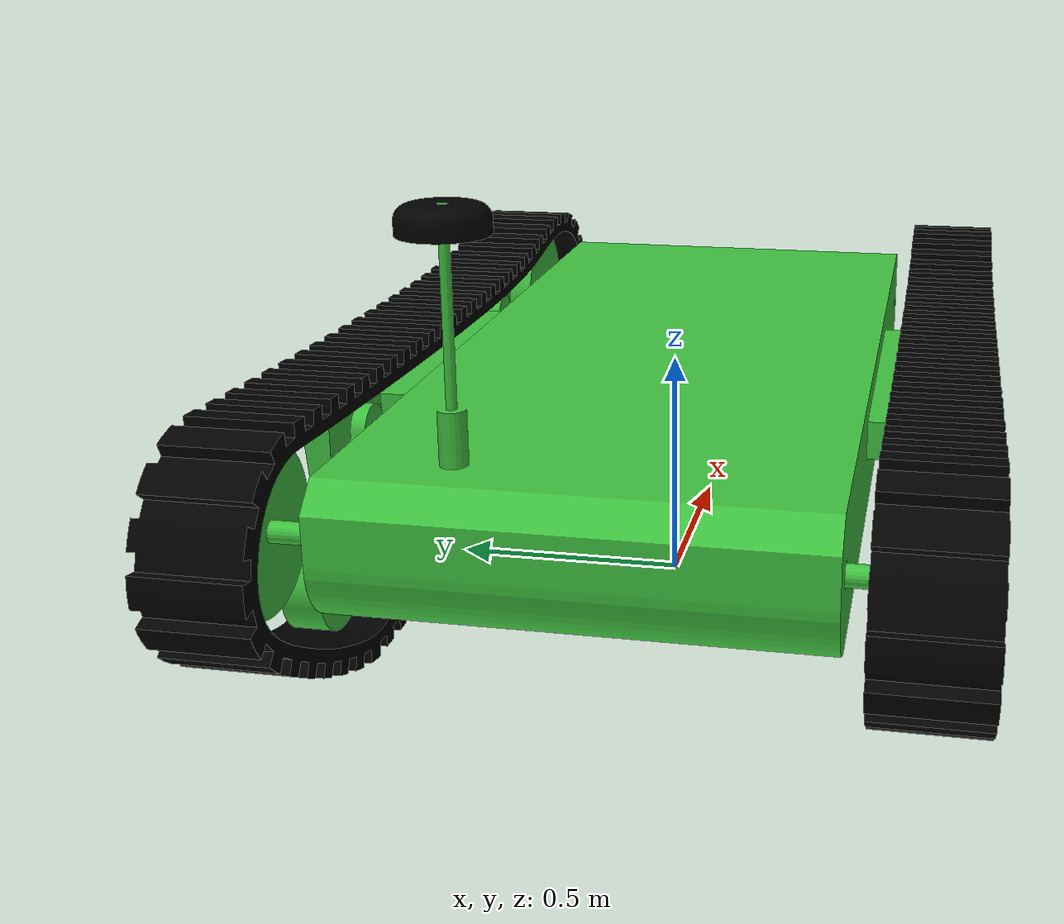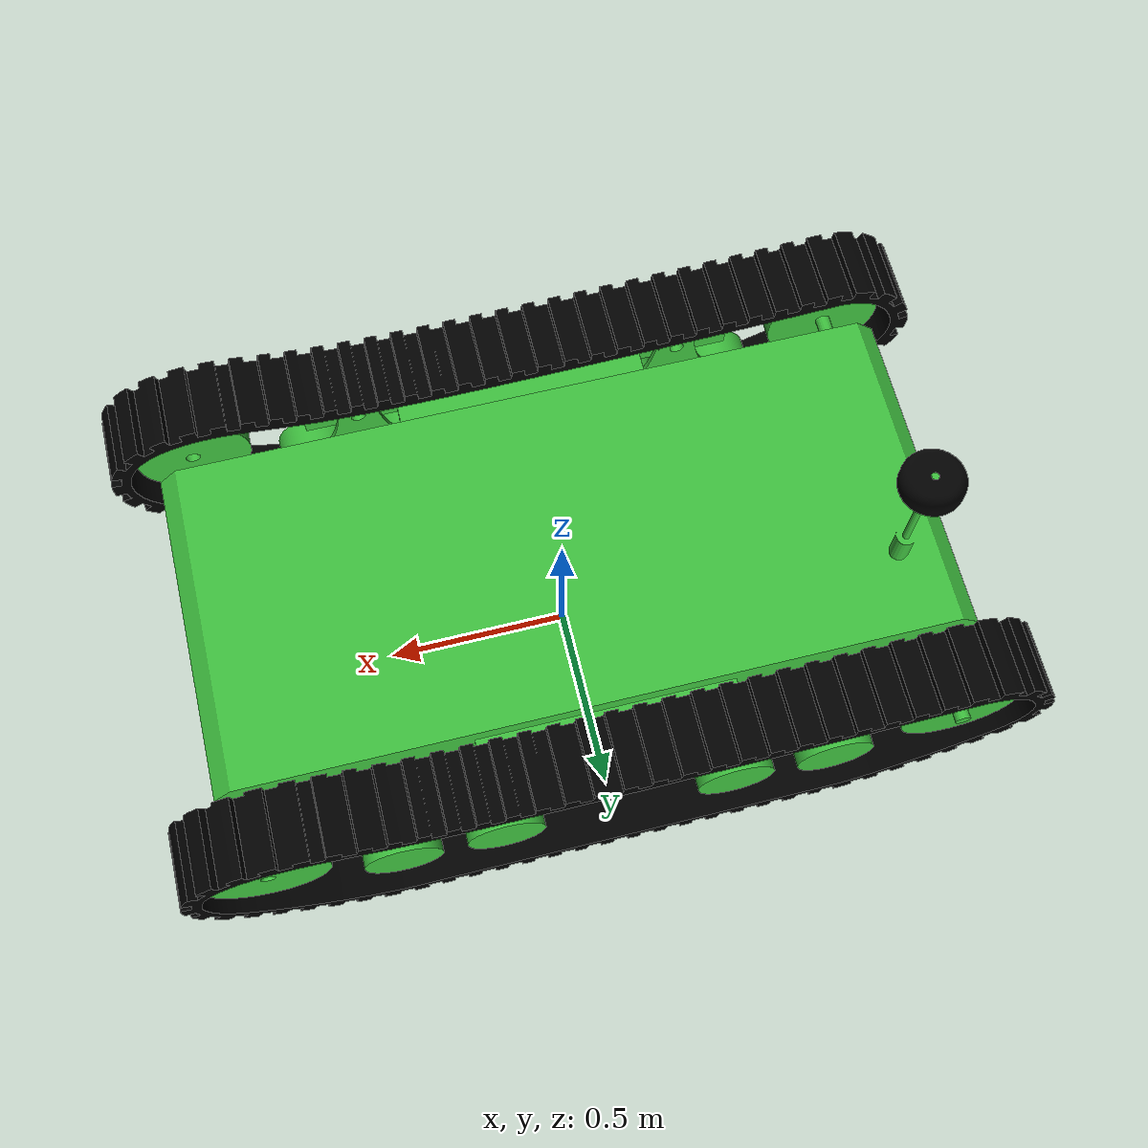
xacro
<?xml version="1.0" ?>
<robot name="base_link" xmlns:xacro="http://www.ros.org/wiki/xacro">

<!-- true  -> mock/"fake" ros2_control hardware (no physics, drive in RViz)
     false -> Gazebo Sim (gz_ros2_control) physics plugin -->
<xacro:arg name="use_mock_hardware" default="true" />

<xacro:include filename="$(find base_link_description)/urdf/materials.xacro" />

<xacro:include filename="$(find base_link_description)/urdf/base_link.gazebo" />

<!-- ros2_control hardware + controller interfaces for the drive wheels -->
<xacro:include filename="$(find base_link_description)/urdf/base_link.ros2control.xml" />
<xacro:base_link_ros2_control name="TankSystem" use_mock_hardware="$(arg use_mock_hardware)" />

<link name="base_footprint"/>

<link name="base_link">
  <inertial>
    <origin xyz="-0.00010002077702376659 0.0006224515569482331 0.01113434691014634" rpy="0 0 0"/>
    <mass value="461.29192739820286"/>
    <inertia ixx="147.674137" iyy="33.210044" izz="175.286525" ixy="-0.057608" iyz="0.049541" ixz="0.016827"/>
  </inertial>
  <visual>
    <origin xyz="0 0 0" rpy="0 0 0"/>
    <geometry>
      <mesh filename="file://$(find base_link_description)/meshes/base_link.stl" scale="0.001 0.001 0.001"/>
    </geometry>
    <material name="olive"/>
  </visual>
  <collision>
    <origin xyz="0 0 0" rpy="0 0 0"/>
    <geometry>
      <mesh filename="file://$(find base_link_description)/meshes/base_link.stl" scale="0.001 0.001 0.001"/>
    </geometry>
  </collision>
</link>

<link name="antenna_v2_1">
  <inertial>
    <origin xyz="1.4688707175580795e-07 1.635889268492008e-08 -0.026339341270721017" rpy="0 0 0"/>
    <mass value="7.443853988598451"/>
    <inertia ixx="0.013163" iyy="0.013163" izz="0.023421" ixy="0.0" iyz="-0.0" ixz="-0.0"/>
  </inertial>
  <visual>
    <origin xyz="0.227499 0.83798 -0.595434" rpy="0 0 0"/>
    <geometry>
      <mesh filename="file://$(find base_link_description)/meshes/antenna_v2_1.stl" scale="0.001 0.001 0.001"/>
    </geometry>
    <material name="noir"/>
  </visual>
  <collision>
    <origin xyz="0.227499 0.83798 -0.595434" rpy="0 0 0"/>
    <geometry>
      <mesh filename="file://$(find base_link_description)/meshes/antenna_v2_1.stl" scale="0.001 0.001 0.001"/>
    </geometry>
  </collision>
</link>

<link name="right_bar_v2_1">
  <inertial>
    <origin xyz="0.10777547321276287 -0.00187845083644138 -0.0002642432047443438" rpy="0 0 0"/>
    <mass value="111.43733098378524"/>
    <inertia ixx="9.426015" iyy="0.390473" izz="9.577074" ixy="0.007814" iyz="-4.1e-05" ixz="-0.0031"/>
  </inertial>
  <visual>
    <origin xyz="-0.443 0.005817 -0.05851" rpy="0 0 0"/>
    <geometry>
      <mesh filename="file://$(find base_link_description)/meshes/right_bar_v2_1.stl" scale="0.001 0.001 0.001"/>
    </geometry>
    <material name="olive"/>
  </visual>
  <collision>
    <origin xyz="-0.443 0.005817 -0.05851" rpy="0 0 0"/>
    <geometry>
      <mesh filename="file://$(find base_link_description)/meshes/right_bar_v2_1.stl" scale="0.001 0.001 0.001"/>
    </geometry>
  </collision>
</link>

<link name="left_bar_v2_1">
  <inertial>
    <origin xyz="-0.10228837341940195 -0.002513547475841639 -0.0002732197771366379" rpy="0 0 0"/>
    <mass value="107.77149910990899"/>
    <inertia ixx="9.283295" iyy="0.348238" izz="9.395681" ixy="-0.00916" iyz="-5.5e-05" ixz="0.003203"/>
  </inertial>
  <visual>
    <origin xyz="0.442 0.005817 -0.05851" rpy="0 0 0"/>
    <geometry>
      <mesh filename="file://$(find base_link_description)/meshes/left_bar_v2_1.stl" scale="0.001 0.001 0.001"/>
    </geometry>
    <material name="olive"/>
  </visual>
  <collision>
    <origin xyz="0.442 0.005817 -0.05851" rpy="0 0 0"/>
    <geometry>
      <mesh filename="file://$(find base_link_description)/meshes/left_bar_v2_1.stl" scale="0.001 0.001 0.001"/>
    </geometry>
  </collision>
</link>

<link name="left_back_glide_wheel_holder_v2_1">
  <inertial>
    <origin xyz="0.010782508394603929 0.0004752621318085404 -0.16365949373448246" rpy="0 0 0"/>
    <mass value="8.127452615459884"/>
    <inertia ixx="0.154629" iyy="0.0851" izz="0.070596" ixy="-7e-06" iyz="0.00041" ixz="0.000152"/>
  </inertial>
  <visual>
    <origin xyz="0.553 0.461162 -0.06173" rpy="0 0 0"/>
    <geometry>
      <mesh filename="file://$(find base_link_description)/meshes/left_back_glide_wheel_holder_v2_1.stl" scale="0.001 0.001 0.001"/>
    </geometry>
    <material name="olive"/>
  </visual>
  <collision>
    <origin xyz="0.553 0.461162 -0.06173" rpy="0 0 0"/>
    <geometry>
      <mesh filename="file://$(find base_link_description)/meshes/left_back_glide_wheel_holder_v2_1.stl" scale="0.001 0.001 0.001"/>
    </geometry>
  </collision>
</link>

<link name="left_front_glide_wheel_holder_v2_1">
  <inertial>
    <origin xyz="0.010782508394603929 0.0004747580919743366 -0.1636594937344824" rpy="0 0 0"/>
    <mass value="8.127452615459832"/>
    <inertia ixx="0.154629" iyy="0.0851" izz="0.070596" ixy="-7e-06" iyz="0.00041" ixz="0.000152"/>
  </inertial>
  <visual>
    <origin xyz="0.553 -0.439845 -0.06173" rpy="0 0 0"/>
    <geometry>
      <mesh filename="file://$(find base_link_description)/meshes/left_front_glide_wheel_holder_v2_1.stl" scale="0.001 0.001 0.001"/>
    </geometry>
    <material name="olive"/>
  </visual>
  <collision>
    <origin xyz="0.553 -0.439845 -0.06173" rpy="0 0 0"/>
    <geometry>
      <mesh filename="file://$(find base_link_description)/meshes/left_front_glide_wheel_holder_v2_1.stl" scale="0.001 0.001 0.001"/>
    </geometry>
  </collision>
</link>

<link name="right_front_glide_wheel_holder_v2_1">
  <inertial>
    <origin xyz="-0.010782508394647783 -0.0004746255244190145 -0.16365949374264965" rpy="0 0 0"/>
    <mass value="8.127452615544318"/>
    <inertia ixx="0.154629" iyy="0.0851" izz="0.070596" ixy="-7e-06" iyz="-0.00041" ixz="-0.000152"/>
  </inertial>
  <visual>
    <origin xyz="-0.563 -0.441851 -0.06173" rpy="0 0 0"/>
    <geometry>
      <mesh filename="file://$(find base_link_description)/meshes/right_front_glide_wheel_holder_v2_1.stl" scale="0.001 0.001 0.001"/>
    </geometry>
    <material name="olive"/>
  </visual>
  <collision>
    <origin xyz="-0.563 -0.441851 -0.06173" rpy="0 0 0"/>
    <geometry>
      <mesh filename="file://$(find base_link_description)/meshes/right_front_glide_wheel_holder_v2_1.stl" scale="0.001 0.001 0.001"/>
    </geometry>
  </collision>
</link>

<link name="right_back_glide_wheel_holder_v2_1">
  <inertial>
    <origin xyz="-0.010782508394647783 -0.00047512148458467296 -0.16365949374264957" rpy="0 0 0"/>
    <mass value="8.127452615544314"/>
    <inertia ixx="0.154629" iyy="0.0851" izz="0.070596" ixy="-7e-06" iyz="-0.00041" ixz="-0.000152"/>
  </inertial>
  <visual>
    <origin xyz="-0.563 0.459155 -0.06173" rpy="0 0 0"/>
    <geometry>
      <mesh filename="file://$(find base_link_description)/meshes/right_back_glide_wheel_holder_v2_1.stl" scale="0.001 0.001 0.001"/>
    </geometry>
    <material name="olive"/>
  </visual>
  <collision>
    <origin xyz="-0.563 0.459155 -0.06173" rpy="0 0 0"/>
    <geometry>
      <mesh filename="file://$(find base_link_description)/meshes/right_back_glide_wheel_holder_v2_1.stl" scale="0.001 0.001 0.001"/>
    </geometry>
  </collision>
</link>

<link name="right_back_wheel_v2_1">
  <inertial>
    <origin xyz="0.045664687889095446 0.00046458563283147125 -5.956414337113594e-05" rpy="0 0 0"/>
    <mass value="75.26539884501864"/>
    <inertia ixx="0.804248" iyy="6.293027" izz="6.29303" ixy="-0.003645" iyz="0.0" ixz="0.00047"/>
  </inertial>
  <visual>
    <origin xyz="-0.445 0.891477 -0.020339" rpy="0 0 0"/>
    <geometry>
      <mesh filename="file://$(find base_link_description)/meshes/right_back_wheel_v2_1.stl" scale="0.001 0.001 0.001"/>
    </geometry>
    <material name="olive"/>
  </visual>
  <collision>
    <origin xyz="-0.445 0.891477 -0.020339" rpy="0 0 0"/>
    <geometry>
      <mesh filename="file://$(find base_link_description)/meshes/right_back_wheel_v2_1.stl" scale="0.001 0.001 0.001"/>
    </geometry>
  </collision>
</link>

<link name="right_front_wheel_v2_1">
  <inertial>
    <origin xyz="0.14999999999999997 -0.004067886170248114 0.0010169312169315062" rpy="0 0 0"/>
    <mass value="58.26279925623116"/>
    <inertia ixx="0.711517" iyy="0.404319" izz="0.404304" ixy="0.0" iyz="-4e-06" ixz="-0.0"/>
  </inertial>
  <visual>
    <origin xyz="-0.445 -0.905845 -0.009" rpy="0 0 0"/>
    <geometry>
      <mesh filename="file://$(find base_link_description)/meshes/right_front_wheel_v2_1.stl" scale="0.001 0.001 0.001"/>
    </geometry>
    <material name="olive"/>
  </visual>
  <collision>
    <origin xyz="-0.445 -0.905845 -0.009" rpy="0 0 0"/>
    <geometry>
      <mesh filename="file://$(find base_link_description)/meshes/right_front_wheel_v2_1.stl" scale="0.001 0.001 0.001"/>
    </geometry>
  </collision>
</link>

<link name="left_front_wheel_v2_1">
  <inertial>
    <origin xyz="-0.14999999999999997 -1.6130252111778987e-07 3.226585665316861e-16" rpy="0 0 0"/>
    <mass value="61.898864581790114"/>
    <inertia ixx="0.801571" iyy="0.452368" izz="0.452368" ixy="0.0" iyz="0.0" ixz="0.0"/>
  </inertial>
  <visual>
    <origin xyz="0.445 -0.905845 -0.009" rpy="0 0 0"/>
    <geometry>
      <mesh filename="file://$(find base_link_description)/meshes/left_front_wheel_v2_1.stl" scale="0.001 0.001 0.001"/>
    </geometry>
    <material name="olive"/>
  </visual>
  <collision>
    <origin xyz="0.445 -0.905845 -0.009" rpy="0 0 0"/>
    <geometry>
      <mesh filename="file://$(find base_link_description)/meshes/left_front_wheel_v2_1.stl" scale="0.001 0.001 0.001"/>
    </geometry>
  </collision>
</link>

<link name="right_track_v2_1">
  <inertial>
    <origin xyz="-4.847200867352797e-07 0.013309623173726724 -0.17537645560050405" rpy="0 0 0"/>
    <mass value="41.280541740102585"/>
    <inertia ixx="22.1242" iyy="2.274667" izz="20.124736" ixy="0.0" iyz="0.00987" ixz="-0.0"/>
  </inertial>
  <visual>
    <origin xyz="-0.590942 0.009155 -0.122942" rpy="0 0 0"/>
    <geometry>
      <mesh filename="file://$(find base_link_description)/meshes/right_track_v2_1.stl" scale="0.001 0.001 0.001"/>
    </geometry>
    <material name="noir"/>
  </visual>
  <collision>
    <origin xyz="-0.590942 0.009155 -0.122942" rpy="0 0 0"/>
    <geometry>
      <mesh filename="file://$(find base_link_description)/meshes/right_track_v2_1.stl" scale="0.001 0.001 0.001"/>
    </geometry>
  </collision>
</link>

<link name="left_track_v3_1">
  <inertial>
    <origin xyz="4.847051781053935e-07 0.008309582381853376 -0.17537645560052342" rpy="0 0 0"/>
    <mass value="41.28054174010031"/>
    <inertia ixx="22.1242" iyy="2.274667" izz="20.124736" ixy="0.0" iyz="0.00987" ixz="-0.0"/>
  </inertial>
  <visual>
    <origin xyz="0.580942 0.010155 -0.122942" rpy="0 0 0"/>
    <geometry>
      <mesh filename="file://$(find base_link_description)/meshes/left_track_v3_1.stl" scale="0.001 0.001 0.001"/>
    </geometry>
    <material name="noir"/>
  </visual>
  <collision>
    <origin xyz="0.580942 0.010155 -0.122942" rpy="0 0 0"/>
    <geometry>
      <mesh filename="file://$(find base_link_description)/meshes/left_track_v3_1.stl" scale="0.001 0.001 0.001"/>
    </geometry>
  </collision>
</link>

<link name="left_glide_wheel_1_v2_1">
  <inertial>
    <origin xyz="-0.04000000000000026 2.93865748846045e-07 5.551115123125783e-17" rpy="0 0 0"/>
    <mass value="21.751445055659623"/>
    <inertia ixx="0.119905" iyy="0.071553" izz="0.071553" ixy="-0.0" iyz="0.0" ixz="0.0"/>
  </inertial>
  <visual>
    <origin xyz="0.553 -0.578351 0.2" rpy="0 0 0"/>
    <geometry>
      <mesh filename="file://$(find base_link_description)/meshes/left_glide_wheel_1_v2_1.stl" scale="0.001 0.001 0.001"/>
    </geometry>
    <material name="olive"/>
  </visual>
  <collision>
    <origin xyz="0.553 -0.578351 0.2" rpy="0 0 0"/>
    <geometry>
      <mesh filename="file://$(find base_link_description)/meshes/left_glide_wheel_1_v2_1.stl" scale="0.001 0.001 0.001"/>
    </geometry>
  </collision>
</link>

<link name="left_glide_wheel_2_v2_1">
  <inertial>
    <origin xyz="-0.040000000000000036 2.93865748846045e-07 0.0" rpy="0 0 0"/>
    <mass value="21.751445055659666"/>
    <inertia ixx="0.119905" iyy="0.071553" izz="0.071553" ixy="-0.0" iyz="-0.0" ixz="0.0"/>
  </inertial>
  <visual>
    <origin xyz="0.553 -0.303351 0.2" rpy="0 0 0"/>
    <geometry>
      <mesh filename="file://$(find base_link_description)/meshes/left_glide_wheel_2_v2_1.stl" scale="0.001 0.001 0.001"/>
    </geometry>
    <material name="olive"/>
  </visual>
  <collision>
    <origin xyz="0.553 -0.303351 0.2" rpy="0 0 0"/>
    <geometry>
      <mesh filename="file://$(find base_link_description)/meshes/left_glide_wheel_2_v2_1.stl" scale="0.001 0.001 0.001"/>
    </geometry>
  </collision>
</link>

<link name="left_glide_wheel_3_v2_1">
  <inertial>
    <origin xyz="-0.039999999999999925 -2.0209441681240392e-07 -2.7755575615628914e-17" rpy="0 0 0"/>
    <mass value="21.751445055659648"/>
    <inertia ixx="0.119905" iyy="0.071553" izz="0.071553" ixy="0.0" iyz="-0.0" ixz="0.0"/>
  </inertial>
  <visual>
    <origin xyz="0.553 0.322655 0.2" rpy="0 0 0"/>
    <geometry>
      <mesh filename="file://$(find base_link_description)/meshes/left_glide_wheel_3_v2_1.stl" scale="0.001 0.001 0.001"/>
    </geometry>
    <material name="olive"/>
  </visual>
  <collision>
    <origin xyz="0.553 0.322655 0.2" rpy="0 0 0"/>
    <geometry>
      <mesh filename="file://$(find base_link_description)/meshes/left_glide_wheel_3_v2_1.stl" scale="0.001 0.001 0.001"/>
    </geometry>
  </collision>
</link>

<link name="left_glide_wheel_4_v2_1">
  <inertial>
    <origin xyz="-0.040000000000000036 -2.0209441686791507e-07 -2.7755575615628914e-17" rpy="0 0 0"/>
    <mass value="21.751445055659605"/>
    <inertia ixx="0.119905" iyy="0.071553" izz="0.071553" ixy="0.0" iyz="0.0" ixz="0.0"/>
  </inertial>
  <visual>
    <origin xyz="0.553 0.597655 0.2" rpy="0 0 0"/>
    <geometry>
      <mesh filename="file://$(find base_link_description)/meshes/left_glide_wheel_4_v2_1.stl" scale="0.001 0.001 0.001"/>
    </geometry>
    <material name="olive"/>
  </visual>
  <collision>
    <origin xyz="0.553 0.597655 0.2" rpy="0 0 0"/>
    <geometry>
      <mesh filename="file://$(find base_link_description)/meshes/left_glide_wheel_4_v2_1.stl" scale="0.001 0.001 0.001"/>
    </geometry>
  </collision>
</link>

<link name="right_glide_wheel_1_v2_1">
  <inertial>
    <origin xyz="0.039999999999999925 3.427373466147188e-07 1.6653345369377348e-16" rpy="0 0 0"/>
    <mass value="21.751445055659644"/>
    <inertia ixx="0.119905" iyy="0.071553" izz="0.071553" ixy="-0.0" iyz="0.0" ixz="0.0"/>
  </inertial>
  <visual>
    <origin xyz="-0.563 0.597662 0.2" rpy="0 0 0"/>
    <geometry>
      <mesh filename="file://$(find base_link_description)/meshes/right_glide_wheel_1_v2_1.stl" scale="0.001 0.001 0.001"/>
    </geometry>
    <material name="olive"/>
  </visual>
  <collision>
    <origin xyz="-0.563 0.597662 0.2" rpy="0 0 0"/>
    <geometry>
      <mesh filename="file://$(find base_link_description)/meshes/right_glide_wheel_1_v2_1.stl" scale="0.001 0.001 0.001"/>
    </geometry>
  </collision>
</link>

<link name="right_glide_wheel_2_v2_1">
  <inertial>
    <origin xyz="0.039999999999999925 3.427373465592076e-07 1.6653345369377348e-16" rpy="0 0 0"/>
    <mass value="21.751445055659644"/>
    <inertia ixx="0.119905" iyy="0.071553" izz="0.071553" ixy="-0.0" iyz="-0.0" ixz="0.0"/>
  </inertial>
  <visual>
    <origin xyz="-0.563 0.322662 0.2" rpy="0 0 0"/>
    <geometry>
      <mesh filename="file://$(find base_link_description)/meshes/right_glide_wheel_2_v2_1.stl" scale="0.001 0.001 0.001"/>
    </geometry>
    <material name="olive"/>
  </visual>
  <collision>
    <origin xyz="-0.563 0.322662 0.2" rpy="0 0 0"/>
    <geometry>
      <mesh filename="file://$(find base_link_description)/meshes/right_glide_wheel_2_v2_1.stl" scale="0.001 0.001 0.001"/>
    </geometry>
  </collision>
</link>

<link name="right_glide_wheel_3_v2_1">
  <inertial>
    <origin xyz="0.039999999999999925 -1.6130248775558798e-07 0.0" rpy="0 0 0"/>
    <mass value="21.751445055659666"/>
    <inertia ixx="0.119905" iyy="0.071553" izz="0.071553" ixy="-0.0" iyz="0.0" ixz="-0.0"/>
  </inertial>
  <visual>
    <origin xyz="-0.563 -0.303345 0.2" rpy="0 0 0"/>
    <geometry>
      <mesh filename="file://$(find base_link_description)/meshes/right_glide_wheel_3_v2_1.stl" scale="0.001 0.001 0.001"/>
    </geometry>
    <material name="olive"/>
  </visual>
  <collision>
    <origin xyz="-0.563 -0.303345 0.2" rpy="0 0 0"/>
    <geometry>
      <mesh filename="file://$(find base_link_description)/meshes/right_glide_wheel_3_v2_1.stl" scale="0.001 0.001 0.001"/>
    </geometry>
  </collision>
</link>

<link name="right_glide_wheel_4_v2_1">
  <inertial>
    <origin xyz="0.039999999999999925 -1.6130248770007682e-07 0.0" rpy="0 0 0"/>
    <mass value="21.751445055659666"/>
    <inertia ixx="0.119905" iyy="0.071553" izz="0.071553" ixy="0.0" iyz="0.0" ixz="-0.0"/>
  </inertial>
  <visual>
    <origin xyz="-0.563 -0.578345 0.2" rpy="0 0 0"/>
    <geometry>
      <mesh filename="file://$(find base_link_description)/meshes/right_glide_wheel_4_v2_1.stl" scale="0.001 0.001 0.001"/>
    </geometry>
    <material name="olive"/>
  </visual>
  <collision>
    <origin xyz="-0.563 -0.578345 0.2" rpy="0 0 0"/>
    <geometry>
      <mesh filename="file://$(find base_link_description)/meshes/right_glide_wheel_4_v2_1.stl" scale="0.001 0.001 0.001"/>
    </geometry>
  </collision>
</link>

<link name="left_back_wheel_v2_1">
  <inertial>
    <origin xyz="-0.14999999999999997 4.595570534116078e-07 2.770034841018121e-07" rpy="0 0 0"/>
    <mass value="59.2492593494584"/>
    <inertia ixx="0.711732" iyy="0.40524" izz="0.40524" ixy="0.0" iyz="-0.0" ixz="0.0"/>
  </inertial>
  <visual>
    <origin xyz="0.445 0.891477 -0.020339" rpy="0 0 0"/>
    <geometry>
      <mesh filename="file://$(find base_link_description)/meshes/left_back_wheel_v2_1.stl" scale="0.001 0.001 0.001"/>
    </geometry>
    <material name="olive"/>
  </visual>
  <collision>
    <origin xyz="0.445 0.891477 -0.020339" rpy="0 0 0"/>
    <geometry>
      <mesh filename="file://$(find base_link_description)/meshes/left_back_wheel_v2_1.stl" scale="0.001 0.001 0.001"/>
    </geometry>
  </collision>
</link>

<joint name="Rigid" type="fixed">
  <origin xyz="0 0 0.4" rpy="0 0 -1.5707963267948966"/>
  <parent link="base_footprint"/>
  <child link="base_link"/>

</joint>

<joint name="Rigid 1" type="fixed">
  <origin xyz="-0.227499 -0.83798 0.595434" rpy="0 0 0"/>
  <parent link="base_link"/>
  <child link="antenna_v2_1"/>
</joint>

<joint name="Rigid 2" type="fixed">
  <origin xyz="0.443 -0.005817 0.05851" rpy="0 0 0"/>
  <parent link="base_link"/>
  <child link="right_bar_v2_1"/>
</joint>

<joint name="Rigid 3" type="fixed">
  <origin xyz="-0.442 -0.005817 0.05851" rpy="0 0 0"/>
  <parent link="base_link"/>
  <child link="left_bar_v2_1"/>
</joint>

<joint name="Rigid 4" type="fixed">
  <origin xyz="-0.111 -0.455345 0.00322" rpy="0 0 0"/>
  <parent link="left_bar_v2_1"/>
  <child link="left_back_glide_wheel_holder_v2_1"/>
</joint>

<joint name="Rigid 5" type="fixed">
  <origin xyz="-0.111 0.445662 0.00322" rpy="0 0 0"/>
  <parent link="left_bar_v2_1"/>
  <child link="left_front_glide_wheel_holder_v2_1"/>
</joint>

<joint name="Rigid 6" type="fixed">
  <origin xyz="0.12 0.447668 0.00322" rpy="0 0 0"/>
  <parent link="right_bar_v2_1"/>
  <child link="right_front_glide_wheel_holder_v2_1"/>
</joint>

<joint name="Rigid 7" type="fixed">
  <origin xyz="0.12 -0.453338 0.00322" rpy="0 0 0"/>
  <parent link="right_bar_v2_1"/>
  <child link="right_back_glide_wheel_holder_v2_1"/>
</joint>

<joint name="Revolute 8" type="continuous">
  <origin xyz="0.445 -0.891477 0.020339" rpy="0 0 0"/>
  <parent link="base_link"/>
  <child link="right_back_wheel_v2_1"/>
  <axis xyz="-1.0 0.0 0.0"/>
</joint>

<joint name="Revolute 10" type="continuous">
  <origin xyz="0.445 0.905845 0.009" rpy="0 0 0"/>
  <parent link="base_link"/>
  <child link="right_front_wheel_v2_1"/>
  <axis xyz="-1.0 0.0 0.0"/>
</joint>

<joint name="Revolute 11" type="continuous">
  <origin xyz="-0.445 0.905845 0.009" rpy="0 0 0"/>
  <parent link="base_link"/>
  <child link="left_front_wheel_v2_1"/>
  <axis xyz="-1.0 0.0 0.0"/>
</joint>

<joint name="Rigid 12" type="fixed">
  <origin xyz="0.147942 -0.003338 0.064432" rpy="0 0 0"/>
  <parent link="right_bar_v2_1"/>
  <child link="right_track_v2_1"/>
</joint>

<joint name="Rigid 13" type="fixed">
  <origin xyz="-0.138942 -0.004338 0.064432" rpy="0 0 0"/>
  <parent link="left_bar_v2_1"/>
  <child link="left_track_v3_1"/>
</joint>

<joint name="Revolute 14" type="continuous">
  <origin xyz="0.0 0.138506 -0.26173" rpy="0 0 0"/>
  <parent link="left_front_glide_wheel_holder_v2_1"/>
  <child link="left_glide_wheel_1_v2_1"/>
  <axis xyz="-1.0 -0.0 0.0"/>
</joint>

<joint name="Revolute 15" type="continuous">
  <origin xyz="0.0 -0.136494 -0.26173" rpy="0 0 0"/>
  <parent link="left_front_glide_wheel_holder_v2_1"/>
  <child link="left_glide_wheel_2_v2_1"/>
  <axis xyz="-1.0 -0.0 0.0"/>
</joint>

<joint name="Revolute 16" type="continuous">
  <origin xyz="0.0 0.138507 -0.26173" rpy="0 0 0"/>
  <parent link="left_back_glide_wheel_holder_v2_1"/>
  <child link="left_glide_wheel_3_v2_1"/>
  <axis xyz="-1.0 -0.0 0.0"/>
</joint>

<joint name="Revolute 17" type="continuous">
  <origin xyz="0.0 -0.136493 -0.26173" rpy="0 0 0"/>
  <parent link="left_back_glide_wheel_holder_v2_1"/>
  <child link="left_glide_wheel_4_v2_1"/>
  <axis xyz="-1.0 -0.0 0.0"/>
</joint>

<joint name="Revolute 18" type="continuous">
  <origin xyz="0.0 -0.138507 -0.26173" rpy="0 0 0"/>
  <parent link="right_back_glide_wheel_holder_v2_1"/>
  <child link="right_glide_wheel_1_v2_1"/>
  <axis xyz="-1.0 0.0 0.0"/>
</joint>

<joint name="Revolute 19" type="continuous">
  <origin xyz="0.0 0.136493 -0.26173" rpy="0 0 0"/>
  <parent link="right_back_glide_wheel_holder_v2_1"/>
  <child link="right_glide_wheel_2_v2_1"/>
  <axis xyz="-1.0 0.0 0.0"/>
</joint>

<joint name="Revolute 20" type="continuous">
  <origin xyz="0.0 -0.138506 -0.26173" rpy="0 0 0"/>
  <parent link="right_front_glide_wheel_holder_v2_1"/>
  <child link="right_glide_wheel_3_v2_1"/>
  <axis xyz="-1.0 0.0 0.0"/>
</joint>

<joint name="Revolute 21" type="continuous">
  <origin xyz="0.0 0.136494 -0.26173" rpy="0 0 0"/>
  <parent link="right_front_glide_wheel_holder_v2_1"/>
  <child link="right_glide_wheel_4_v2_1"/>
  <axis xyz="-1.0 0.0 0.0"/>
</joint>

<joint name="Revolute 22" type="continuous">
  <origin xyz="-0.445 -0.891477 0.020339" rpy="0 0 0"/>
  <parent link="base_link"/>
  <child link="left_back_wheel_v2_1"/>
  <axis xyz="-1.0 0.0 0.0"/>
</joint>

</robot>

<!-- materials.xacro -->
<robot name="base_link" xmlns:xacro="http://www.ros.org/wiki/xacro" >

<material name="silver">
  <color rgba="0.700 0.700 0.700 1.000"/>
</material>

<material name="noir">
  <color rgba="0.000 0.000 0.000 1.000"/>
</material>

<material name="olive">
  <color rgba="0.25 0.77 0.25 1.000"/>
</material>

</robot>

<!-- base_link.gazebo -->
<robot name="base_link" xmlns:xacro="http://www.ros.org/wiki/xacro" >

<xacro:property name="body_color" value="Gazebo/Silver" />

<gazebo reference="base_link">
  <material>${body_color}</material>
  <mu1>0.2</mu1>
  <mu2>0.2</mu2>
  <self_collide>true</self_collide>
  <gravity>true</gravity>
</gazebo>

<gazebo reference="antenna_v2_1">
  <material>${body_color}</material>
  <mu1>0.2</mu1>
  <mu2>0.2</mu2>
  <self_collide>true</self_collide>
</gazebo>

<gazebo reference="right_bar_v2_1">
  <material>${body_color}</material>
  <mu1>0.2</mu1>
  <mu2>0.2</mu2>
  <self_collide>true</self_collide>
</gazebo>

<gazebo reference="left_bar_v2_1">
  <material>${body_color}</material>
  <mu1>0.2</mu1>
  <mu2>0.2</mu2>
  <self_collide>true</self_collide>
</gazebo>

<gazebo reference="left_back_glide_wheel_holder_v2_1">
  <material>${body_color}</material>
  <mu1>0.2</mu1>
  <mu2>0.2</mu2>
  <self_collide>true</self_collide>
</gazebo>

<gazebo reference="left_front_glide_wheel_holder_v2_1">
  <material>${body_color}</material>
  <mu1>0.2</mu1>
  <mu2>0.2</mu2>
  <self_collide>true</self_collide>
</gazebo>

<gazebo reference="right_front_glide_wheel_holder_v2_1">
  <material>${body_color}</material>
  <mu1>0.2</mu1>
  <mu2>0.2</mu2>
  <self_collide>true</self_collide>
</gazebo>

<gazebo reference="right_back_glide_wheel_holder_v2_1">
  <material>${body_color}</material>
  <mu1>0.2</mu1>
  <mu2>0.2</mu2>
  <self_collide>true</self_collide>
</gazebo>

<gazebo reference="right_back_wheel_v2_1">
  <material>${body_color}</material>
  <mu1>1.0</mu1>
  <mu2>1.0</mu2>
  <self_collide>true</self_collide>
</gazebo>

<gazebo reference="right_front_wheel_v2_1">
  <material>${body_color}</material>
  <mu1>1.0</mu1>
  <mu2>1.0</mu2>
  <self_collide>true</self_collide>
</gazebo>

<gazebo reference="left_front_wheel_v2_1">
  <material>${body_color}</material>
  <mu1>1.0</mu1>
  <mu2>1.0</mu2>
  <self_collide>true</self_collide>
</gazebo>

<gazebo reference="right_track_v2_1">
  <material>${body_color}</material>
  <mu1>0.05</mu1>
  <mu2>0.05</mu2>
  <self_collide>true</self_collide>
</gazebo>

<gazebo reference="left_track_v3_1">
  <material>${body_color}</material>
  <mu1>0.05</mu1>
  <mu2>0.05</mu2>
  <self_collide>true</self_collide>
</gazebo>

<gazebo reference="left_glide_wheel_1_v2_1">
  <material>${body_color}</material>
  <mu1>0.2</mu1>
  <mu2>0.2</mu2>
  <self_collide>true</self_collide>
</gazebo>

<gazebo reference="left_glide_wheel_2_v2_1">
  <material>${body_color}</material>
  <mu1>0.2</mu1>
  <mu2>0.2</mu2>
  <self_collide>true</self_collide>
</gazebo>

<gazebo reference="left_glide_wheel_3_v2_1">
  <material>${body_color}</material>
  <mu1>0.2</mu1>
  <mu2>0.2</mu2>
  <self_collide>true</self_collide>
</gazebo>

<gazebo reference="left_glide_wheel_4_v2_1">
  <material>${body_color}</material>
  <mu1>0.2</mu1>
  <mu2>0.2</mu2>
  <self_collide>true</self_collide>
</gazebo>

<gazebo reference="right_glide_wheel_1_v2_1">
  <material>${body_color}</material>
  <mu1>0.2</mu1>
  <mu2>0.2</mu2>
  <self_collide>true</self_collide>
</gazebo>

<gazebo reference="right_glide_wheel_2_v2_1">
  <material>${body_color}</material>
  <mu1>0.2</mu1>
  <mu2>0.2</mu2>
  <self_collide>true</self_collide>
</gazebo>

<gazebo reference="right_glide_wheel_3_v2_1">
  <material>${body_color}</material>
  <mu1>0.2</mu1>
  <mu2>0.2</mu2>
  <self_collide>true</self_collide>
</gazebo>

<gazebo reference="right_glide_wheel_4_v2_1">
  <material>${body_color}</material>
  <mu1>0.2</mu1>
  <mu2>0.2</mu2>
  <self_collide>true</self_collide>
</gazebo>

<gazebo reference="left_back_wheel_v2_1">
  <material>${body_color}</material>
  <mu1>1.0</mu1>
  <mu2>1.0</mu2>
  <self_collide>true</self_collide>
</gazebo>

<!-- ================= Gazebo (Ignition Fortress) drive ================= -->
<xacro:unless value="$(arg use_mock_hardware)">
  <gazebo>
    <plugin filename="ignition-gazebo-diff-drive-system"
            name="ignition::gazebo::systems::DiffDrive">
      <!-- LEFT side: 2 drive sprockets + 4 idle/road wheels = 6 wheels -->
      <left_joint>Revolute 11</left_joint>   <!-- left front drive  -->
      <left_joint>Revolute 22</left_joint>   <!-- left back drive   -->
      <left_joint>Revolute 14</left_joint>   <!-- left idle 1 -->
      <left_joint>Revolute 15</left_joint>   <!-- left idle 2 -->
      <left_joint>Revolute 16</left_joint>   <!-- left idle 3 -->
      <left_joint>Revolute 17</left_joint>   <!-- left idle 4 -->
      <!-- RIGHT side: 2 drive sprockets + 4 idle/road wheels = 6 wheels -->
      <right_joint>Revolute 10</right_joint> <!-- right front drive  -->
      <right_joint>Revolute 8</right_joint>  <!-- right back drive   -->
      <right_joint>Revolute 18</right_joint> <!-- right idle 1 -->
      <right_joint>Revolute 19</right_joint> <!-- right idle 2 -->
      <right_joint>Revolute 20</right_joint> <!-- right idle 3 -->
      <right_joint>Revolute 21</right_joint> <!-- right idle 4 -->

      <wheel_separation>0.89</wheel_separation>
      <wheel_radius>0.2</wheel_radius>

      <max_linear_acceleration>1.0</max_linear_acceleration>
      <topic>cmd_vel</topic>
      <odom_topic>odom</odom_topic>
      <tf_topic>tf</tf_topic>
      <frame_id>odom</frame_id>
      <child_frame_id>base_footprint</child_frame_id>
      <odom_publish_frequency>50</odom_publish_frequency>
    </plugin>

    <plugin filename="ignition-gazebo-velocity-control-system"
            name="ignition::gazebo::systems::VelocityControl">
      <topic>cmd_vel</topic>
    </plugin>

    <!-- publish joint angles so the wheels visibly spin in RViz -->
    <plugin filename="ignition-gazebo-joint-state-publisher-system"
            name="ignition::gazebo::systems::JointStatePublisher">
    </plugin>
  </gazebo>
</xacro:unless>

</robot>
